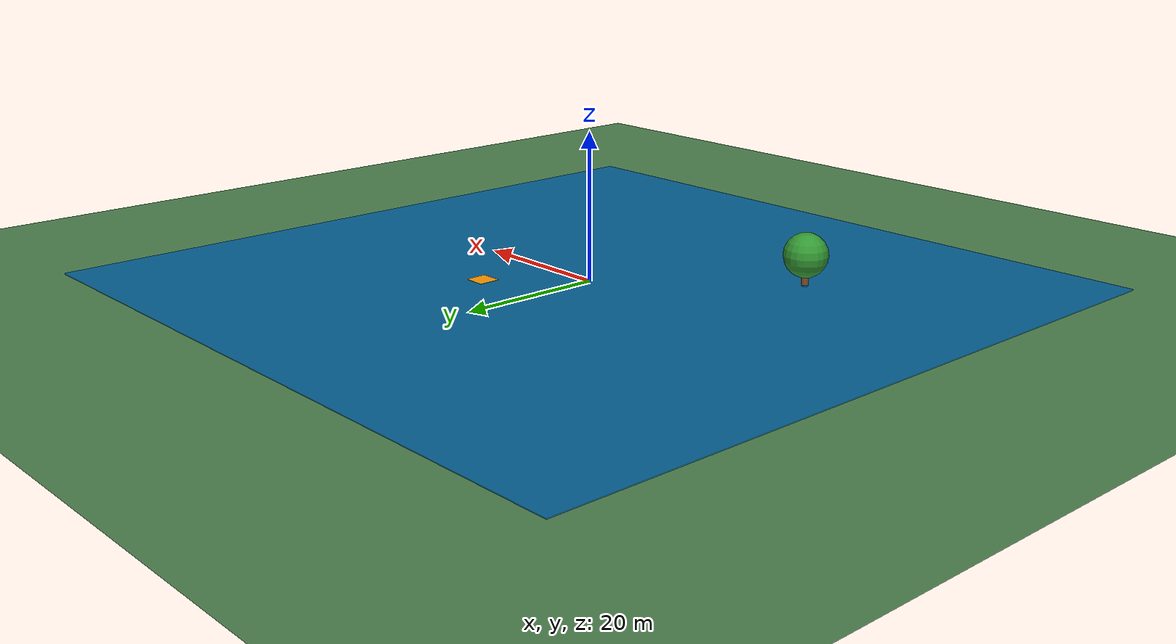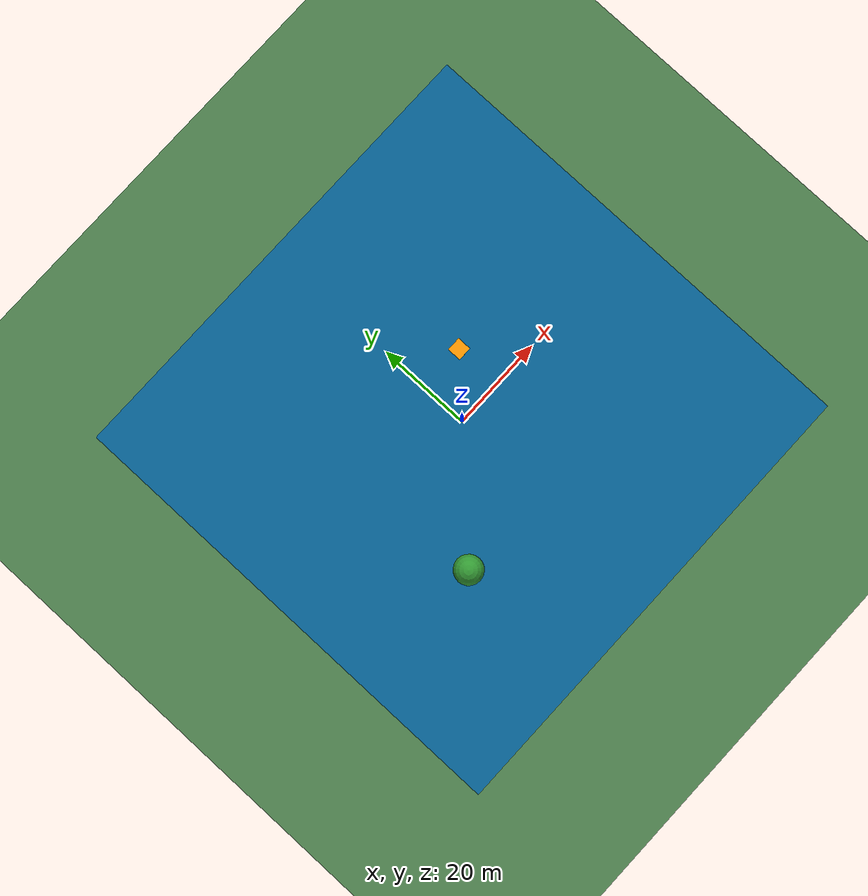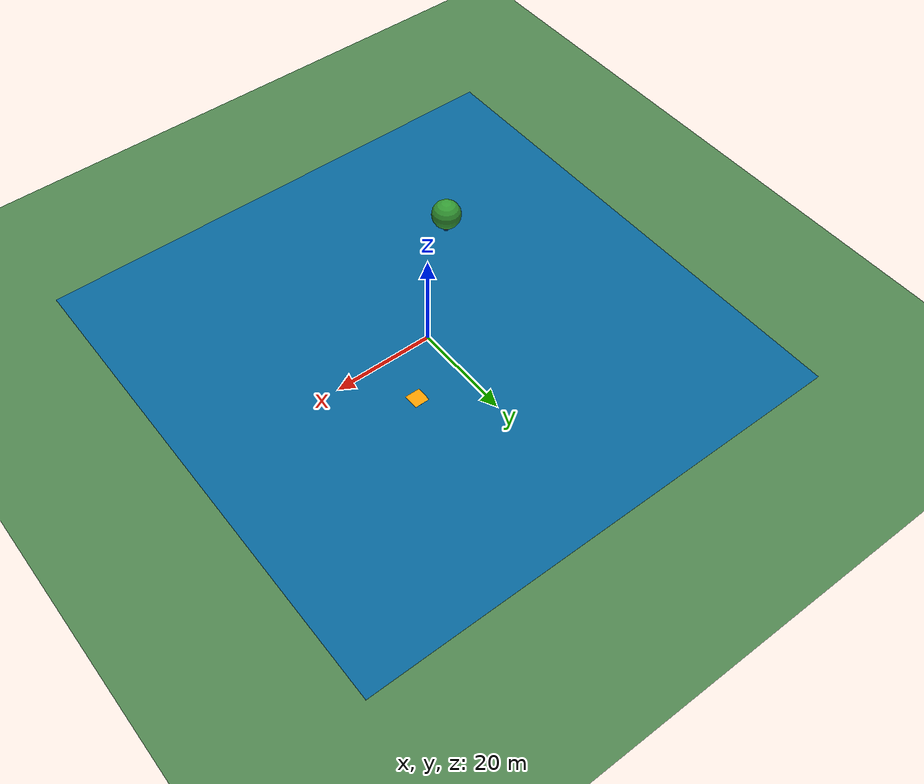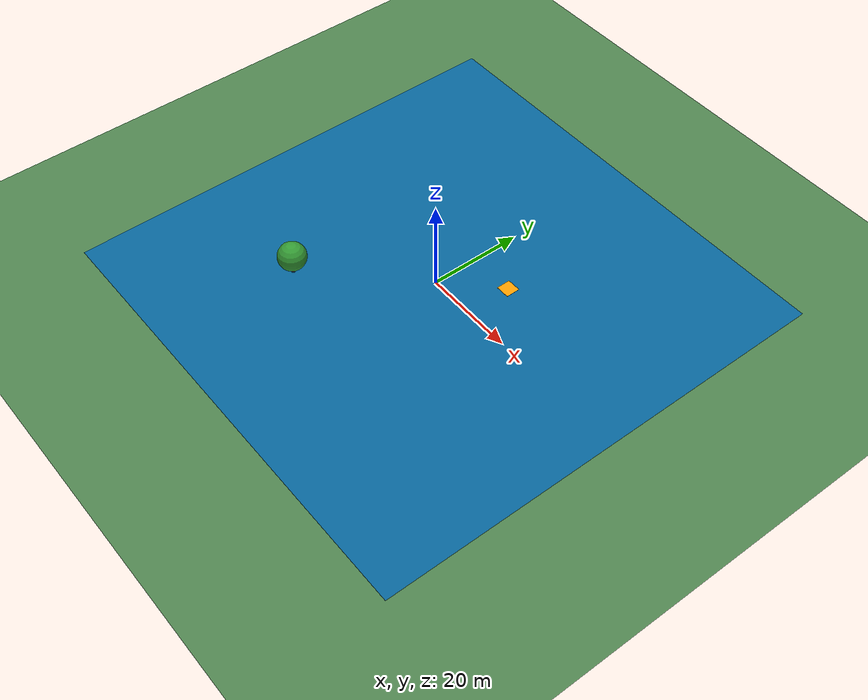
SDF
<sdf version="1.6">
 <world name="water_sampling_world">
  <physics type="ode">
   <max_step_size>0.001</max_step_size>
   <real_time_factor>1.0</real_time_factor>
   <real_time_update_rate>1000</real_time_update_rate>
   <gravity>0 0 -9.81</gravity>
  </physics>
  <scene>
   <ambient>0.5 0.5 0.5 1.0</ambient>
   <background>0.5 0.7 1.0 1.0</background>
   <shadows>true</shadows>
   <sky><clouds><speed>0.15</speed></clouds></sky>
  </scene>
  <light name="sun" type="directional">
   <pose>0 0 100 0 0 0</pose>
   <diffuse>0.8 0.8 0.8 1</diffuse>
   <specular>0.2 0.2 0.2 1</specular>
   <attenuation>
    <range>1000</range>
    <constant>0.9</constant>
    <linear>0.01</linear>
    <quadratic>0.001</quadratic>
   </attenuation>
   <direction>-0.5 0.1 -0.9</direction>
  </light>
  <model name="ground_plane">
   <static>true</static>
   <link name="link">
    <collision name="collision">
     <geometry><plane><normal>0 0 1</normal><size>1000 1000</size></plane></geometry>
     <surface><friction><ode><mu>100</mu><mu2>50</mu2></ode></friction></surface>
    </collision>
    <visual name="visual">
     <geometry><plane><normal>0 0 1</normal><size>1000 1000</size></plane></geometry>
     <material>
      <ambient>0.3 0.5 0.3 1</ambient>
      <diffuse>0.3 0.5 0.3 1</diffuse>
      <specular>0.01 0.01 0.01 1</specular>
     </material>
    </visual>
   </link>
  </model>
  <model name="lake">
   <static>true</static>
   <pose>0 0 -0.5 0 0 0</pose>
   <link name="link">
    <collision name="collision">
     <geometry><box><size>100 100 1</size></box></geometry>
     <surface><friction><ode><mu>0.1</mu><mu2>0.1</mu2></ode></friction></surface>
    </collision>
    <visual name="visual">
     <geometry><box><size>100 100 1</size></box></geometry>
     <material>
      <ambient>0.0 0.3 0.6 0.8</ambient>
      <diffuse>0.0 0.4 0.7 0.8</diffuse>
      <specular>0.5 0.5 0.5 1</specular>
      <emissive>0 0 0 0</emissive>
     </material>
     <transparency>0.2</transparency>
    </visual>
   </link>
  </model>
  <model name="tree_1">
   <static>true</static>
   <pose>-20 -20 0 0 0 0</pose>
   <link name="link">
    <visual name="trunk">
     <geometry><cylinder><radius>0.5</radius><length>5</length></cylinder></geometry>
     <material><ambient>0.4 0.25 0.1 1</ambient><diffuse>0.5 0.3 0.15 1</diffuse></material>
    </visual>
    <visual name="foliage">
     <pose>0 0 4 0 0 0</pose>
     <geometry><sphere><radius>3</radius></sphere></geometry>
     <material><ambient>0.1 0.4 0.1 1</ambient><diffuse>0.2 0.6 0.2 1</diffuse></material>
    </visual>
   </link>
  </model>
  <model name="launch_pad">
   <static>true</static>
   <pose>10 10 0.01 0 0 0</pose>
   <link name="link">
    <visual name="visual">
     <geometry><box><size>3 3 0.02</size></box></geometry>
     <material><ambient>1 0.5 0 1</ambient><diffuse>1 0.6 0 1</diffuse></material>
    </visual>
   </link>
  </model>
  <wind><linear_velocity>2.0 1.0 0.0</linear_velocity></wind>
  <plugin name="ardupilot_plugin" filename="libArduPilotPlugin.so">
   <fdm_addr>127.0.0.1</fdm_addr>
   <fdm_port_in>9002</fdm_port_in>
   <connectionTimeoutMaxCount>5</connectionTimeoutMaxCount>
   <lock_step>1</lock_step>
   <modelXYZToAirplaneXForwardZDown>0 0 0 3.141593 0 0</modelXYZToAirplaneXForwardZDown>
   <gazeboXYZToNED>0 0 0 3.141593 0 0</gazeboXYZToNED>
  </plugin>
 </world>
</sdf>
